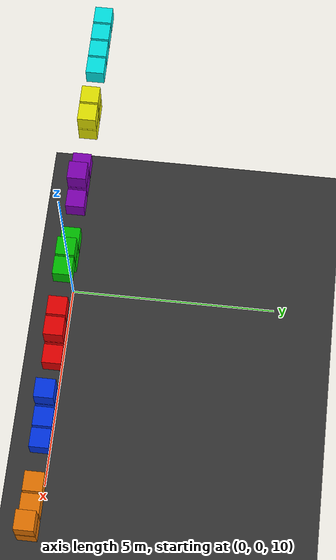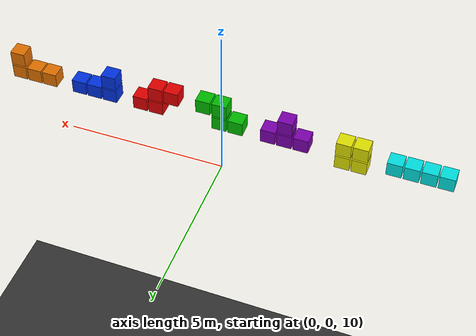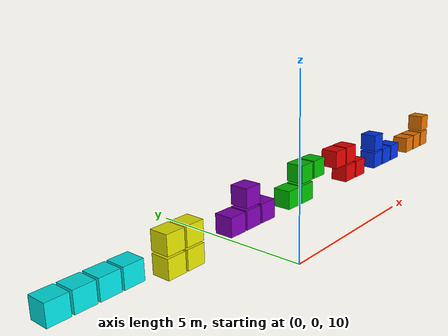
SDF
<?xml version="1.0" ?>
<sdf version="1.9">
  <world name="tetris_world">
    <plugin filename="gz-sim-physics-system" name="gz::sim::systems::Physics" />
    <plugin filename="gz-sim-scene-broadcaster-system" name="gz::sim::systems::SceneBroadcaster" />

    <!-- Ada controls all motion; gravity is zero so pieces fall only when Ada says so -->
    <gravity>0 0 0</gravity>

    <scene>
      <ambient>0.25 0.25 0.25 1</ambient>
      <background>0.05 0.05 0.15 1</background>
      <shadows>false</shadows>
    </scene>

    <light type="directional" name="sun">
      <cast_shadows>false</cast_shadows>
      <pose>0 0 20 0 0 0</pose>
      <diffuse>1.0 1.0 1.0 1</diffuse>
      <specular>0.3 0.3 0.3 1</specular>
    </light>

    <!-- GROUND PLANE — visual floor of the Tetris board -->
    <model name="ground_plane">
      <static>true</static>
      <link name="link">
        <collision name="collision">
          <geometry><plane><normal>0 0 1</normal><size>20 2</size></plane></geometry>
        </collision>
        <visual name="visual">
          <geometry><plane><normal>0 0 1</normal><size>20 2</size></plane></geometry>
          <material>
            <ambient>0.2 0.2 0.2 1</ambient>
            <diffuse>0.2 0.2 0.2 1</diffuse>
            <specular>0.1 0.1 0.1 1</specular>
          </material>
        </visual>
      </link>
    </model>

    <model name="Tetris">

      <!-- I-PIECE: four blocks in a horizontal row  (CYAN)
           Shape:  [ ][ ][ ][ ]
      -->
      <link name="i_piece">
        <pose>-6 0 12 0 0 0</pose>
        <inertial>
          <mass>1.0</mass>
          <inertia><ixx>0.05</ixx><iyy>0.35</iyy><izz>0.35</izz></inertia>
        </inertial>
        <visual name="i1">
          <pose>-0.75 0 0 0 0 0</pose>
          <geometry><box><size>0.45 0.45 0.45</size></box></geometry>
          <material><ambient>0 1 1 1</ambient><diffuse>0 0.9 0.9 1</diffuse><specular>0.4 0.4 0.4 1</specular></material>
        </visual>
        <visual name="i2">
          <pose>-0.25 0 0 0 0 0</pose>
          <geometry><box><size>0.45 0.45 0.45</size></box></geometry>
          <material><ambient>0 1 1 1</ambient><diffuse>0 0.9 0.9 1</diffuse><specular>0.4 0.4 0.4 1</specular></material>
        </visual>
        <visual name="i3">
          <pose>0.25 0 0 0 0 0</pose>
          <geometry><box><size>0.45 0.45 0.45</size></box></geometry>
          <material><ambient>0 1 1 1</ambient><diffuse>0 0.9 0.9 1</diffuse><specular>0.4 0.4 0.4 1</specular></material>
        </visual>
        <visual name="i4">
          <pose>0.75 0 0 0 0 0</pose>
          <geometry><box><size>0.45 0.45 0.45</size></box></geometry>
          <material><ambient>0 1 1 1</ambient><diffuse>0 0.9 0.9 1</diffuse><specular>0.4 0.4 0.4 1</specular></material>
        </visual>
        <collision name="coll">
          <geometry><box><size>2.0 0.5 0.5</size></box></geometry>
        </collision>
      </link>

      <!-- O-PIECE: 2×2 square  (YELLOW)
           Shape:  [ ][ ]
                   [ ][ ]
      -->
      <link name="o_piece">
        <pose>-4 0 12 0 0 0</pose>
        <inertial>
          <mass>1.0</mass>
          <inertia><ixx>0.08</ixx><iyy>0.08</iyy><izz>0.08</izz></inertia>
        </inertial>
        <visual name="o1">
          <pose>-0.25 0 -0.25 0 0 0</pose>
          <geometry><box><size>0.45 0.45 0.45</size></box></geometry>
          <material><ambient>1 1 0 1</ambient><diffuse>0.9 0.9 0 1</diffuse><specular>0.4 0.4 0.4 1</specular></material>
        </visual>
        <visual name="o2">
          <pose>0.25 0 -0.25 0 0 0</pose>
          <geometry><box><size>0.45 0.45 0.45</size></box></geometry>
          <material><ambient>1 1 0 1</ambient><diffuse>0.9 0.9 0 1</diffuse><specular>0.4 0.4 0.4 1</specular></material>
        </visual>
        <visual name="o3">
          <pose>-0.25 0 0.25 0 0 0</pose>
          <geometry><box><size>0.45 0.45 0.45</size></box></geometry>
          <material><ambient>1 1 0 1</ambient><diffuse>0.9 0.9 0 1</diffuse><specular>0.4 0.4 0.4 1</specular></material>
        </visual>
        <visual name="o4">
          <pose>0.25 0 0.25 0 0 0</pose>
          <geometry><box><size>0.45 0.45 0.45</size></box></geometry>
          <material><ambient>1 1 0 1</ambient><diffuse>0.9 0.9 0 1</diffuse><specular>0.4 0.4 0.4 1</specular></material>
        </visual>
        <collision name="coll">
          <geometry><box><size>1.0 0.5 1.0</size></box></geometry>
        </collision>
      </link>

      <!-- T-PIECE: T-shape  (PURPLE)
           Shape:     [ ]
                   [ ][ ][ ]
      -->
      <link name="t_piece">
        <pose>-2 0 12 0 0 0</pose>
        <inertial>
          <mass>1.0</mass>
          <inertia><ixx>0.15</ixx><iyy>0.25</iyy><izz>0.25</izz></inertia>
        </inertial>
        <visual name="t1">
          <pose>-0.5 0 0 0 0 0</pose>
          <geometry><box><size>0.45 0.45 0.45</size></box></geometry>
          <material><ambient>0.6 0 0.8 1</ambient><diffuse>0.5 0 0.7 1</diffuse><specular>0.4 0.4 0.4 1</specular></material>
        </visual>
        <visual name="t2">
          <pose>0 0 0 0 0 0</pose>
          <geometry><box><size>0.45 0.45 0.45</size></box></geometry>
          <material><ambient>0.6 0 0.8 1</ambient><diffuse>0.5 0 0.7 1</diffuse><specular>0.4 0.4 0.4 1</specular></material>
        </visual>
        <visual name="t3">
          <pose>0.5 0 0 0 0 0</pose>
          <geometry><box><size>0.45 0.45 0.45</size></box></geometry>
          <material><ambient>0.6 0 0.8 1</ambient><diffuse>0.5 0 0.7 1</diffuse><specular>0.4 0.4 0.4 1</specular></material>
        </visual>
        <visual name="t4">
          <pose>0 0 0.5 0 0 0</pose>
          <geometry><box><size>0.45 0.45 0.45</size></box></geometry>
          <material><ambient>0.6 0 0.8 1</ambient><diffuse>0.5 0 0.7 1</diffuse><specular>0.4 0.4 0.4 1</specular></material>
        </visual>
        <collision name="coll">
          <geometry><box><size>1.5 0.5 1.0</size></box></geometry>
        </collision>
      </link>

      <!-- S-PIECE: S-shape  (GREEN)
           Shape:     [ ][ ]
                   [ ][ ]
      -->
      <link name="s_piece">
        <pose>0 0 12 0 0 0</pose>
        <inertial>
          <mass>1.0</mass>
          <inertia><ixx>0.15</ixx><iyy>0.25</iyy><izz>0.25</izz></inertia>
        </inertial>
        <visual name="s1">
          <pose>-0.5 0 0 0 0 0</pose>
          <geometry><box><size>0.45 0.45 0.45</size></box></geometry>
          <material><ambient>0 0.85 0 1</ambient><diffuse>0 0.75 0 1</diffuse><specular>0.4 0.4 0.4 1</specular></material>
        </visual>
        <visual name="s2">
          <pose>0 0 0 0 0 0</pose>
          <geometry><box><size>0.45 0.45 0.45</size></box></geometry>
          <material><ambient>0 0.85 0 1</ambient><diffuse>0 0.75 0 1</diffuse><specular>0.4 0.4 0.4 1</specular></material>
        </visual>
        <visual name="s3">
          <pose>0 0 0.5 0 0 0</pose>
          <geometry><box><size>0.45 0.45 0.45</size></box></geometry>
          <material><ambient>0 0.85 0 1</ambient><diffuse>0 0.75 0 1</diffuse><specular>0.4 0.4 0.4 1</specular></material>
        </visual>
        <visual name="s4">
          <pose>0.5 0 0.5 0 0 0</pose>
          <geometry><box><size>0.45 0.45 0.45</size></box></geometry>
          <material><ambient>0 0.85 0 1</ambient><diffuse>0 0.75 0 1</diffuse><specular>0.4 0.4 0.4 1</specular></material>
        </visual>
        <collision name="coll">
          <geometry><box><size>1.5 0.5 1.0</size></box></geometry>
        </collision>
      </link>

      <!-- Z-PIECE: Z-shape  (RED)
           Shape:  [ ][ ]
                      [ ][ ]
      -->
      <link name="z_piece">
        <pose>2 0 12 0 0 0</pose>
        <inertial>
          <mass>1.0</mass>
          <inertia><ixx>0.15</ixx><iyy>0.25</iyy><izz>0.25</izz></inertia>
        </inertial>
        <visual name="z1">
          <pose>-0.5 0 0.5 0 0 0</pose>
          <geometry><box><size>0.45 0.45 0.45</size></box></geometry>
          <material><ambient>1 0 0 1</ambient><diffuse>0.9 0 0 1</diffuse><specular>0.4 0.4 0.4 1</specular></material>
        </visual>
        <visual name="z2">
          <pose>0 0 0.5 0 0 0</pose>
          <geometry><box><size>0.45 0.45 0.45</size></box></geometry>
          <material><ambient>1 0 0 1</ambient><diffuse>0.9 0 0 1</diffuse><specular>0.4 0.4 0.4 1</specular></material>
        </visual>
        <visual name="z3">
          <pose>0 0 0 0 0 0</pose>
          <geometry><box><size>0.45 0.45 0.45</size></box></geometry>
          <material><ambient>1 0 0 1</ambient><diffuse>0.9 0 0 1</diffuse><specular>0.4 0.4 0.4 1</specular></material>
        </visual>
        <visual name="z4">
          <pose>0.5 0 0 0 0 0</pose>
          <geometry><box><size>0.45 0.45 0.45</size></box></geometry>
          <material><ambient>1 0 0 1</ambient><diffuse>0.9 0 0 1</diffuse><specular>0.4 0.4 0.4 1</specular></material>
        </visual>
        <collision name="coll">
          <geometry><box><size>1.5 0.5 1.0</size></box></geometry>
        </collision>
      </link>

      <!-- J-PIECE: J-shape  (BLUE)
           Shape:  [ ]
                   [ ][ ][ ]
      -->
      <link name="j_piece">
        <pose>4 0 12 0 0 0</pose>
        <inertial>
          <mass>1.0</mass>
          <inertia><ixx>0.15</ixx><iyy>0.25</iyy><izz>0.25</izz></inertia>
        </inertial>
        <visual name="j1">
          <pose>-0.5 0 0 0 0 0</pose>
          <geometry><box><size>0.45 0.45 0.45</size></box></geometry>
          <material><ambient>0 0.3 1 1</ambient><diffuse>0 0.2 0.9 1</diffuse><specular>0.4 0.4 0.4 1</specular></material>
        </visual>
        <visual name="j2">
          <pose>0 0 0 0 0 0</pose>
          <geometry><box><size>0.45 0.45 0.45</size></box></geometry>
          <material><ambient>0 0.3 1 1</ambient><diffuse>0 0.2 0.9 1</diffuse><specular>0.4 0.4 0.4 1</specular></material>
        </visual>
        <visual name="j3">
          <pose>0.5 0 0 0 0 0</pose>
          <geometry><box><size>0.45 0.45 0.45</size></box></geometry>
          <material><ambient>0 0.3 1 1</ambient><diffuse>0 0.2 0.9 1</diffuse><specular>0.4 0.4 0.4 1</specular></material>
        </visual>
        <visual name="j4">
          <pose>-0.5 0 0.5 0 0 0</pose>
          <geometry><box><size>0.45 0.45 0.45</size></box></geometry>
          <material><ambient>0 0.3 1 1</ambient><diffuse>0 0.2 0.9 1</diffuse><specular>0.4 0.4 0.4 1</specular></material>
        </visual>
        <collision name="coll">
          <geometry><box><size>1.5 0.5 1.0</size></box></geometry>
        </collision>
      </link>

      <!-- L-PIECE: L-shape  (ORANGE)
           Shape:         [ ]
                   [ ][ ][ ]
      -->
      <link name="l_piece">
        <pose>6 0 12 0 0 0</pose>
        <inertial>
          <mass>1.0</mass>
          <inertia><ixx>0.15</ixx><iyy>0.25</iyy><izz>0.25</izz></inertia>
        </inertial>
        <visual name="l1">
          <pose>-0.5 0 0 0 0 0</pose>
          <geometry><box><size>0.45 0.45 0.45</size></box></geometry>
          <material><ambient>1 0.5 0 1</ambient><diffuse>0.9 0.45 0 1</diffuse><specular>0.4 0.4 0.4 1</specular></material>
        </visual>
        <visual name="l2">
          <pose>0 0 0 0 0 0</pose>
          <geometry><box><size>0.45 0.45 0.45</size></box></geometry>
          <material><ambient>1 0.5 0 1</ambient><diffuse>0.9 0.45 0 1</diffuse><specular>0.4 0.4 0.4 1</specular></material>
        </visual>
        <visual name="l3">
          <pose>0.5 0 0 0 0 0</pose>
          <geometry><box><size>0.45 0.45 0.45</size></box></geometry>
          <material><ambient>1 0.5 0 1</ambient><diffuse>0.9 0.45 0 1</diffuse><specular>0.4 0.4 0.4 1</specular></material>
        </visual>
        <visual name="l4">
          <pose>0.5 0 0.5 0 0 0</pose>
          <geometry><box><size>0.45 0.45 0.45</size></box></geometry>
          <material><ambient>1 0.5 0 1</ambient><diffuse>0.9 0.45 0 1</diffuse><specular>0.4 0.4 0.4 1</specular></material>
        </visual>
        <collision name="coll">
          <geometry><box><size>1.5 0.5 1.0</size></box></geometry>
        </collision>
      </link>

      <plugin filename="libTablePlugin.so" name="custom_sim::TableControlPlugin" />
    </model>

  </world>
</sdf>
